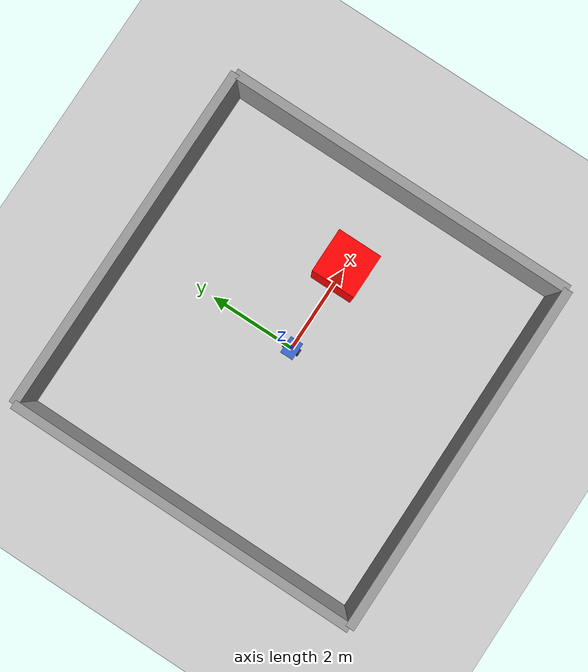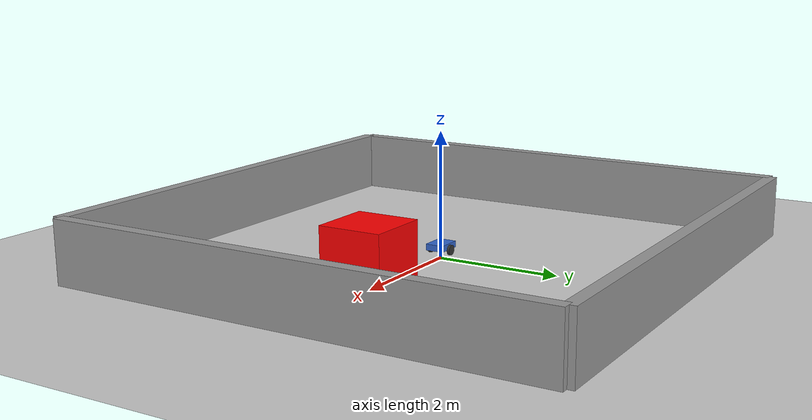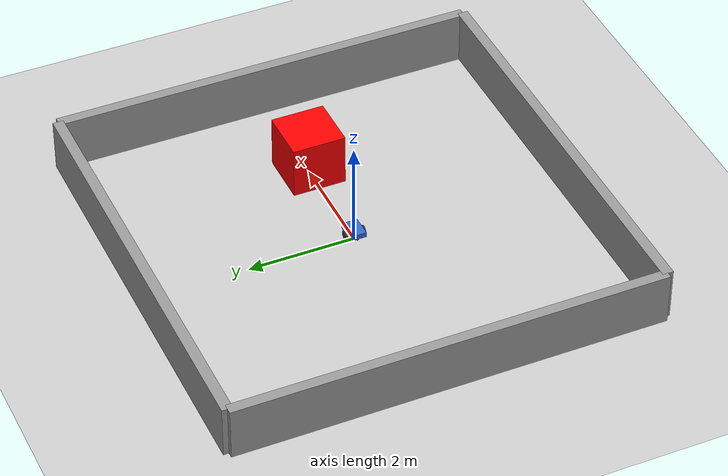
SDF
<?xml version="1.0" ?>
<sdf version="1.9">
  <world name="diffbot_world">

    <physics name="1ms" type="ignored">
      <max_step_size>0.001</max_step_size>
      <real_time_factor>1.0</real_time_factor>
    </physics>

    <plugin filename="gz-sim-physics-system" name="gz::sim::systems::Physics">
    </plugin>
    <plugin filename="gz-sim-sensors-system" name="gz::sim::systems::Sensors">
      <render_engine>ogre2</render_engine>
    </plugin>
    <plugin filename="gz-sim-scene-broadcaster-system" name="gz::sim::systems::SceneBroadcaster">
    </plugin>
    <plugin filename="gz-sim-user-commands-system" name="gz::sim::systems::UserCommands">
    </plugin>

    <light type="directional" name="sun">
      <cast_shadows>true</cast_shadows>
      <pose>0 0 10 0 0 0</pose>
      <diffuse>0.8 0.8 0.8 1</diffuse>
      <specular>0.2 0.2 0.2 1</specular>
      <attenuation>
        <range>1000</range>
        <constant>0.9</constant>
        <linear>0.01</linear>
        <quadratic>0.001</quadratic>
      </attenuation>
      <direction>-0.5 0.1 -0.9</direction>
    </light>

    <model name="ground_plane">
      <static>true</static>
      <link name="link">
        <collision name="collision">
          <geometry>
            <plane>
              <normal>0 0 1</normal>
              <size>100 100</size>
            </plane>
          </geometry>
        </collision>
        <visual name="visual">
          <geometry>
            <plane>
              <normal>0 0 1</normal>
              <size>100 100</size>
            </plane>
          </geometry>
          <material>
            <ambient>0.8 0.8 0.8 1</ambient>
            <diffuse>0.8 0.8 0.8 1</diffuse>
            <specular>0.8 0.8 0.8 1</specular>
          </material>
        </visual>
      </link>
    </model>

    <!-- A box obstacle so the lidar has something to see -->
    <model name="obstacle_box">
      <static>true</static>
      <pose>2 0 0.5 0 0 0</pose>
      <link name="link">
        <collision name="collision">
          <geometry>
            <box>
              <size>1 1 1</size>
            </box>
          </geometry>
        </collision>
        <visual name="visual">
          <geometry>
            <box>
              <size>1 1 1</size>
            </box>
          </geometry>
          <material>
            <ambient>1 0 0 1</ambient>
            <diffuse>1 0 0 1</diffuse>
            <specular>1 0 0 1</specular>
          </material>
        </visual>
      </link>
    </model>

    <!-- Enclosing walls so every lidar ray (360 samples, full circle) hits
         something within range_max instead of returning inf. -->
    <model name="arena_walls">
      <static>true</static>
      <link name="walls">
        <collision name="wall_north_collision">
          <pose>0 4 0.5 0 0 0</pose>
          <geometry>
            <box>
              <size>8 0.2 1</size>
            </box>
          </geometry>
        </collision>
        <visual name="wall_north_visual">
          <pose>0 4 0.5 0 0 0</pose>
          <geometry>
            <box>
              <size>8 0.2 1</size>
            </box>
          </geometry>
          <material>
            <ambient>0.6 0.6 0.6 1</ambient>
            <diffuse>0.6 0.6 0.6 1</diffuse>
          </material>
        </visual>

        <collision name="wall_south_collision">
          <pose>0 -4 0.5 0 0 0</pose>
          <geometry>
            <box>
              <size>8 0.2 1</size>
            </box>
          </geometry>
        </collision>
        <visual name="wall_south_visual">
          <pose>0 -4 0.5 0 0 0</pose>
          <geometry>
            <box>
              <size>8 0.2 1</size>
            </box>
          </geometry>
          <material>
            <ambient>0.6 0.6 0.6 1</ambient>
            <diffuse>0.6 0.6 0.6 1</diffuse>
          </material>
        </visual>

        <collision name="wall_east_collision">
          <pose>4 0 0.5 0 0 1.5707963</pose>
          <geometry>
            <box>
              <size>8 0.2 1</size>
            </box>
          </geometry>
        </collision>
        <visual name="wall_east_visual">
          <pose>4 0 0.5 0 0 1.5707963</pose>
          <geometry>
            <box>
              <size>8 0.2 1</size>
            </box>
          </geometry>
          <material>
            <ambient>0.6 0.6 0.6 1</ambient>
            <diffuse>0.6 0.6 0.6 1</diffuse>
          </material>
        </visual>

        <collision name="wall_west_collision">
          <pose>-4 0 0.5 0 0 1.5707963</pose>
          <geometry>
            <box>
              <size>8 0.2 1</size>
            </box>
          </geometry>
        </collision>
        <visual name="wall_west_visual">
          <pose>-4 0 0.5 0 0 1.5707963</pose>
          <geometry>
            <box>
              <size>8 0.2 1</size>
            </box>
          </geometry>
          <material>
            <ambient>0.6 0.6 0.6 1</ambient>
            <diffuse>0.6 0.6 0.6 1</diffuse>
          </material>
        </visual>
      </link>
    </model>

    <model name="diffbot">
      <pose>0 0 0.15 0 0 0</pose>

      <link name="chassis">
        <pose>0 0 0.05 0 0 0</pose>
        <inertial>
          <mass>2.0</mass>
          <inertia>
            <ixx>0.03</ixx>
            <ixy>0</ixy>
            <ixz>0</ixz>
            <iyy>0.05</iyy>
            <iyz>0</iyz>
            <izz>0.06</izz>
          </inertia>
        </inertial>
        <visual name="visual">
          <geometry>
            <box>
              <size>0.4 0.3 0.1</size>
            </box>
          </geometry>
          <material>
            <ambient>0.2 0.4 0.8 1</ambient>
            <diffuse>0.2 0.4 0.8 1</diffuse>
            <specular>0.2 0.2 0.2 1</specular>
          </material>
        </visual>
        <collision name="collision">
          <geometry>
            <box>
              <size>0.4 0.3 0.1</size>
            </box>
          </geometry>
        </collision>

        <sensor name="gpu_lidar" type="gpu_lidar">
          <pose>0.15 0 0.1 0 0 0</pose>
          <topic>scan</topic>
          <update_rate>10</update_rate>
          <always_on>true</always_on>
          <visualize>false</visualize>
          <lidar>
            <scan>
              <horizontal>
                <samples>360</samples>
                <resolution>1</resolution>
                <min_angle>-3.141592653589793</min_angle>
                <max_angle>3.141592653589793</max_angle>
              </horizontal>
              <vertical>
                <samples>1</samples>
                <resolution>1</resolution>
                <min_angle>0</min_angle>
                <max_angle>0</max_angle>
              </vertical>
            </scan>
            <range>
              <min>0.08</min>
              <max>30.0</max>
              <resolution>0.01</resolution>
            </range>
          </lidar>
        </sensor>
      </link>

      <link name="left_wheel">
        <pose>0 0.175 0 -1.5707963 0 0</pose>
        <inertial>
          <mass>0.3</mass>
          <inertia>
            <ixx>0.0006</ixx>
            <ixy>0</ixy>
            <ixz>0</ixz>
            <iyy>0.0006</iyy>
            <iyz>0</iyz>
            <izz>0.001</izz>
          </inertia>
        </inertial>
        <visual name="visual">
          <geometry>
            <cylinder>
              <radius>0.08</radius>
              <length>0.04</length>
            </cylinder>
          </geometry>
          <material>
            <ambient>0.2 0.2 0.2 1</ambient>
            <diffuse>0.2 0.2 0.2 1</diffuse>
            <specular>0.2 0.2 0.2 1</specular>
          </material>
        </visual>
        <collision name="collision">
          <geometry>
            <cylinder>
              <radius>0.08</radius>
              <length>0.04</length>
            </cylinder>
          </geometry>
          <surface>
            <friction>
              <ode>
                <mu>1.0</mu>
                <mu2>1.0</mu2>
              </ode>
            </friction>
          </surface>
        </collision>
      </link>

      <link name="right_wheel">
        <pose>0 -0.175 0 -1.5707963 0 0</pose>
        <inertial>
          <mass>0.3</mass>
          <inertia>
            <ixx>0.0006</ixx>
            <ixy>0</ixy>
            <ixz>0</ixz>
            <iyy>0.0006</iyy>
            <iyz>0</iyz>
            <izz>0.001</izz>
          </inertia>
        </inertial>
        <visual name="visual">
          <geometry>
            <cylinder>
              <radius>0.08</radius>
              <length>0.04</length>
            </cylinder>
          </geometry>
          <material>
            <ambient>0.2 0.2 0.2 1</ambient>
            <diffuse>0.2 0.2 0.2 1</diffuse>
            <specular>0.2 0.2 0.2 1</specular>
          </material>
        </visual>
        <collision name="collision">
          <geometry>
            <cylinder>
              <radius>0.08</radius>
              <length>0.04</length>
            </cylinder>
          </geometry>
          <surface>
            <friction>
              <ode>
                <mu>1.0</mu>
                <mu2>1.0</mu2>
              </ode>
            </friction>
          </surface>
        </collision>
      </link>

      <link name="caster">
        <pose>-0.15 0 -0.03 0 0 0</pose>
        <inertial>
          <mass>0.1</mass>
          <inertia>
            <ixx>0.0001</ixx>
            <ixy>0</ixy>
            <ixz>0</ixz>
            <iyy>0.0001</iyy>
            <iyz>0</iyz>
            <izz>0.0001</izz>
          </inertia>
        </inertial>
        <visual name="visual">
          <geometry>
            <sphere>
              <radius>0.03</radius>
            </sphere>
          </geometry>
          <material>
            <ambient>0.2 0.2 0.2 1</ambient>
            <diffuse>0.2 0.2 0.2 1</diffuse>
            <specular>0.2 0.2 0.2 1</specular>
          </material>
        </visual>
        <collision name="collision">
          <geometry>
            <sphere>
              <radius>0.03</radius>
            </sphere>
          </geometry>
          <surface>
            <friction>
              <ode>
                <mu>0.01</mu>
                <mu2>0.01</mu2>
              </ode>
            </friction>
          </surface>
        </collision>
      </link>

      <joint name="left_wheel_joint" type="revolute">
        <parent>chassis</parent>
        <child>left_wheel</child>
        <axis>
          <xyz>0 0 1</xyz>
          <limit>
            <lower>-1.79769e+308</lower>
            <upper>1.79769e+308</upper>
          </limit>
        </axis>
      </joint>

      <joint name="right_wheel_joint" type="revolute">
        <parent>chassis</parent>
        <child>right_wheel</child>
        <axis>
          <xyz>0 0 1</xyz>
          <limit>
            <lower>-1.79769e+308</lower>
            <upper>1.79769e+308</upper>
          </limit>
        </axis>
      </joint>

      <joint name="caster_wheel" type="ball">
        <parent>chassis</parent>
        <child>caster</child>
      </joint>

      <plugin filename="gz-sim-diff-drive-system" name="gz::sim::systems::DiffDrive">
        <left_joint>left_wheel_joint</left_joint>
        <right_joint>right_wheel_joint</right_joint>
        <wheel_separation>0.35</wheel_separation>
        <wheel_radius>0.08</wheel_radius>
        <topic>cmd_vel</topic>
        <odom_topic>odom</odom_topic>
        <tf_topic>tf</tf_topic>
        <frame_id>odom</frame_id>
        <child_frame_id>base_footprint</child_frame_id>
        <odom_publish_frequency>20</odom_publish_frequency>
        <max_linear_acceleration>3</max_linear_acceleration>
        <min_linear_acceleration>-3</min_linear_acceleration>
        <max_angular_acceleration>5</max_angular_acceleration>
        <min_angular_acceleration>-5</min_angular_acceleration>
        <max_linear_velocity>1.5</max_linear_velocity>
        <min_linear_velocity>-1.5</min_linear_velocity>
        <max_angular_velocity>3</max_angular_velocity>
        <min_angular_velocity>-3</min_angular_velocity>
      </plugin>

      <plugin filename="gz-sim-joint-state-publisher-system" name="gz::sim::systems::JointStatePublisher">
      </plugin>

    </model>

  </world>
</sdf>
